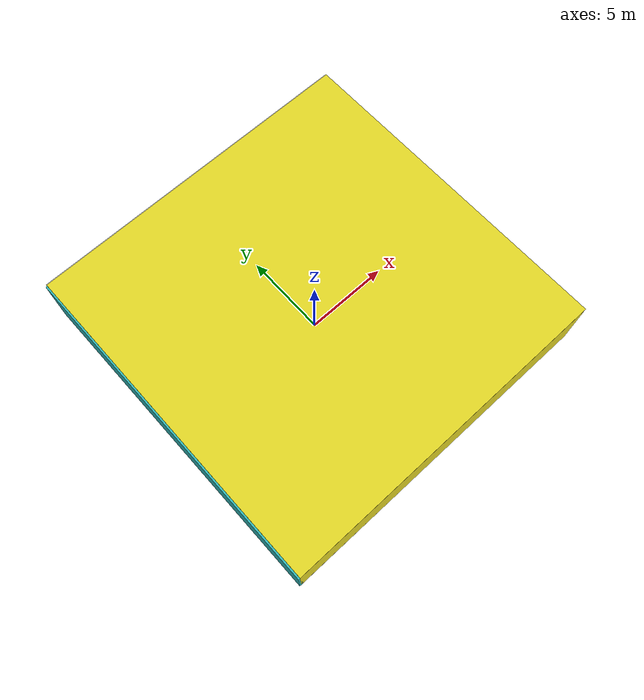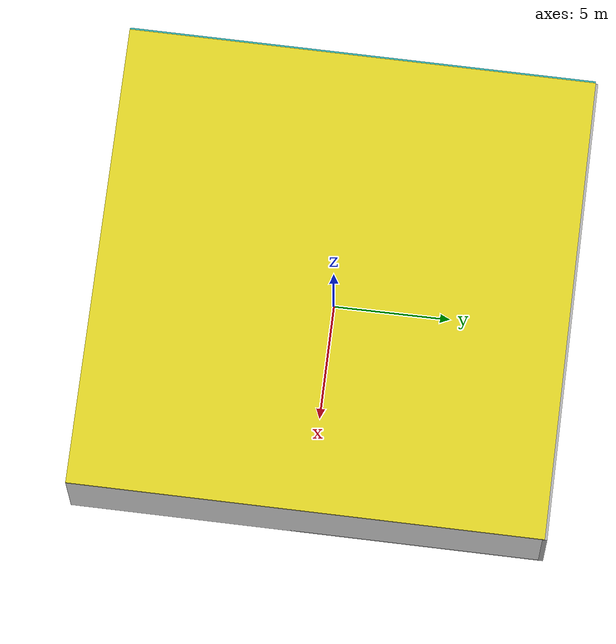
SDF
<sdf version="1.4">
 <world name="default">
  <physics type="ode">
   <max_step_size>0.001</max_step_size>
   <real_time_factor>1</real_time_factor>
   <real_time_update_rate>1000</real_time_update_rate>
   <gravity>0 0 -9.8</gravity>
  </physics>
  <scene><ambient>0.4 0.4 0.4 1</ambient><background>0.7 0.7 0.7 1</background><shadows>1</shadows></scene>
  <model name="Surrounding">
   <static>1</static>
   <link name="Ceiling">
    <collision name="Ceiling_Collision"><geometry><box><size>20 20 0.1</size></box></geometry></collision>
    <visual name="Ceiling_Visual">
     <geometry><box><size>20 20 0.1</size></box></geometry>
     <material>
      <script><uri>file://media/materials/scripts/gazebo.material</uri><name>Gazebo/Yellow</name></script>
     </material>
    </visual>
    <pose>0 0 4.05 0 0 0</pose>
   </link>
   <link name="Wall_South">
    <collision name="Wall_South_Collision">
     <geometry><box><size>20 0 4</size></box></geometry>
     <pose>0 0 2 0 -0 0</pose>
    </collision>
    <visual name="Wall_South_Visual">
     <pose>0 0 2 0 -0 0</pose>
     <geometry><box><size>20 0 4</size></box></geometry>
     <material>
      <script><uri>file://media/materials/scripts/gazebo.material</uri><name>Gazebo/YellowGlow</name></script>
     </material>
    </visual>
    <velocity_decay><linear>0</linear><angular>0</angular></velocity_decay>
    <pose>0 -10 0 0 -0 0</pose>
   </link>
   <link name="Wall_East">
    <collision name="Wall_21_Collision">
     <geometry><box><size>20 0 4</size></box></geometry>
     <pose>0 0 2 0 -0 0</pose>
    </collision>
    <visual name="Wall_21_Visual">
     <pose>0 0 2 0 -0 0</pose>
     <geometry><box><size>20 0 4</size></box></geometry>
     <material>
      <script><uri>file://media/materials/scripts/gazebo.material</uri><name>Gazebo/WhiteGlow</name></script>
     </material>
    </visual>
    <velocity_decay><linear>0</linear><angular>0</angular></velocity_decay>
    <pose>10 0 0 0 -0 1.5708</pose>
   </link>
   <link name="Wall_North">
    <collision name="Wall_22_Collision">
     <geometry><box><size>20 0.2 4</size></box></geometry>
     <pose>0 0 2 0 -0 0</pose>
    </collision>
    <visual name="Wall_22_Visual">
     <pose>0 0 2 0 -0 0</pose>
     <geometry><box><size>20 0.2 4</size></box></geometry>
     <material>
      <script><uri>file://media/materials/scripts/gazebo.material</uri><name>Gazebo/LightOn</name></script>
     </material>
    </visual>
    <velocity_decay><linear>0</linear><angular>0</angular></velocity_decay>
    <pose>0 10 0 0 -0 0</pose>
   </link>
   <link name="Wall_West">
    <collision name="Wall_23_Collision">
     <geometry><box><size>20 0.2 4</size></box></geometry>
     <pose>0 0 2 0 -0 0</pose>
    </collision>
    <visual name="Wall_23_Visual">
     <pose>0 0 2 0 -0 0</pose>
     <geometry><box><size>20 0.2 4</size></box></geometry>
     <material>
      <script><uri>file://media/materials/scripts/gazebo.material</uri><name>Gazebo/Turquoise</name></script>
     </material>
    </visual>
    <velocity_decay><linear>0</linear><angular>0</angular></velocity_decay>
    <pose>-10 0 0 0 0 -1.5708</pose>
   </link>
   <link name="Ground_link">
    <collision name="collision">
     <pose>0 0 .05 0 -0 0</pose>
     <geometry><box><size>20 20 0.1</size></box></geometry>
    </collision>
    <visual name="visual">
     <pose>0 0 .05 0 -0 0</pose>
     <geometry><box><size>20 20 0.1</size></box></geometry>
     <material>
      <script><uri>file://media/materials/scripts/gazebo.material</uri><name>Gazebo/GreyTransparent</name></script>
     </material>
    </visual>
   </link>
   <static>1</static>
  </model>
  <spherical_coordinates>
   <surface_model>EARTH_WGS84</surface_model>
   <latitude_deg>0</latitude_deg>
   <longitude_deg>0</longitude_deg>
   <elevation>0</elevation>
   <heading_deg>0</heading_deg>
  </spherical_coordinates>
  <light name="lightball_0" type="diffuse">
   <diffuse>0.8 0.8 0.8 1</diffuse>
   <specular>0.2 0.2 0.2 1</specular>
   <attenuation>
    <range>100</range>
    <constant>0.7</constant>
    <linear>0.01</linear>
    <quadratic>0.001</quadratic>
   </attenuation>
   <direction>-0.5 0.1 -0.9</direction>
   <pose>1.32961668356 5.83516615336 1.90034270964 0 0 0</pose>
  </light>
  <light name="lightball_1" type="diffuse">
   <diffuse>0.8 0.8 0.8 1</diffuse>
   <specular>0.2 0.2 0.2 1</specular>
   <attenuation>
    <range>100</range>
    <constant>0.7</constant>
    <linear>0.01</linear>
    <quadratic>0.001</quadratic>
   </attenuation>
   <direction>-0.5 0.1 -0.9</direction>
   <pose>-7.47204298163 8.75542916868 2.68199675703 0 0 0</pose>
  </light>
  <light name="lightball_2" type="diffuse">
   <diffuse>0.8 0.8 0.8 1</diffuse>
   <specular>0.2 0.2 0.2 1</specular>
   <attenuation>
    <range>100</range>
    <constant>0.7</constant>
    <linear>0.01</linear>
    <quadratic>0.001</quadratic>
   </attenuation>
   <direction>-0.5 0.1 -0.9</direction>
   <pose>9.90180469328 7.05592220674 2.75554144101 0 0 0</pose>
  </light>
  <light name="lightball_3" type="diffuse">
   <diffuse>0.8 0.8 0.8 1</diffuse>
   <specular>0.2 0.2 0.2 1</specular>
   <attenuation>
    <range>100</range>
    <constant>0.7</constant>
    <linear>0.01</linear>
    <quadratic>0.001</quadratic>
   </attenuation>
   <direction>-0.5 0.1 -0.9</direction>
   <pose>2.48692391846 -1.58899695573 1.59387236167 0 0 0</pose>
  </light>
  <light name="lightball_4" type="diffuse">
   <diffuse>0.8 0.8 0.8 1</diffuse>
   <specular>0.2 0.2 0.2 1</specular>
   <attenuation>
    <range>100</range>
    <constant>0.7</constant>
    <linear>0.01</linear>
    <quadratic>0.001</quadratic>
   </attenuation>
   <direction>-0.5 0.1 -0.9</direction>
   <pose>9.59105091828 3.76616903095 1.11044720282 0 0 0</pose>
  </light>
  <light name="lightball_5" type="diffuse">
   <diffuse>0.8 0.8 0.8 1</diffuse>
   <specular>0.2 0.2 0.2 1</specular>
   <attenuation>
    <range>100</range>
    <constant>0.7</constant>
    <linear>0.01</linear>
    <quadratic>0.001</quadratic>
   </attenuation>
   <direction>-0.5 0.1 -0.9</direction>
   <pose>-2.45301109462 6.74610012383 1.26562103249 0 0 0</pose>
  </light>
  <light name="lightball_6" type="diffuse">
   <diffuse>0.8 0.8 0.8 1</diffuse>
   <specular>0.2 0.2 0.2 1</specular>
   <attenuation>
    <range>100</range>
    <constant>0.7</constant>
    <linear>0.01</linear>
    <quadratic>0.001</quadratic>
   </attenuation>
   <direction>-0.5 0.1 -0.9</direction>
   <pose>8.53854766672 -3.00162207423 1.73624425674 0 0 0</pose>
  </light>
  <light name="lightball_7" type="diffuse">
   <diffuse>0.8 0.8 0.8 1</diffuse>
   <specular>0.2 0.2 0.2 1</specular>
   <attenuation>
    <range>100</range>
    <constant>0.7</constant>
    <linear>0.01</linear>
    <quadratic>0.001</quadratic>
   </attenuation>
   <direction>-0.5 0.1 -0.9</direction>
   <pose>7.53856749841 -3.78032380311 2.25501190178 0 0 0</pose>
  </light>
  <light name="lightball_8" type="diffuse">
   <diffuse>0.8 0.8 0.8 1</diffuse>
   <specular>0.2 0.2 0.2 1</specular>
   <attenuation>
    <range>100</range>
    <constant>0.7</constant>
    <linear>0.01</linear>
    <quadratic>0.001</quadratic>
   </attenuation>
   <direction>-0.5 0.1 -0.9</direction>
   <pose>-6.36304289611 7.03348607205 2.18789133467 0 0 0</pose>
  </light>
  <include>
   <uri>model://robocup_3Dsim_goal</uri>
   <pose>-7.12770916219 -3.76182309205 0 0 0 2.26503791899</pose>
  </include>
  <include>
   <uri>model://construction_cone</uri>
   <pose>-5.43422068762 4.85812670363 0 0 0 1.75335490934</pose>
  </include>
  <include>
   <uri>model://textured_shapes</uri>
   <pose>1.8895158134 -7.31742900027 0 0 0 0.171563187976</pose>
  </include>
  <include>
   <uri>model://construction_cone</uri>
   <pose>1.66723917749 2.59388800084 0 0 0 2.03959897944</pose>
  </include>
  <include><uri>model://cabinet</uri><pose>5.42900509029 -8.36970800533 0 0 0 2.85277831668</pose></include>
  <include><uri>model://cabinet</uri><pose>8.62966086805 6.466696663 0 0 0 2.11329249533</pose></include>
 </world>
</sdf>

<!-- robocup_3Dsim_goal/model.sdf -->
<sdf version="1.5">
  <model name="robocup_3d_goal">
    <static>true</static>
    <link name="left_post">
      <pose>0 1.05 0.45 0 0 0</pose>
      <collision name="collision">
        <geometry>
          <cylinder>
            <radius>0.05</radius>
            <length>0.9</length>
          </cylinder>
        </geometry>
      </collision>
      <visual name="visual">
        <geometry>
          <cylinder>
            <radius>0.05</radius>
            <length>0.9</length>
          </cylinder>
        </geometry>
        <material>
          <script>
            <uri>file://media/materials/scripts/gazebo.material</uri>
            <name>Gazebo/ZincYellow</name>
          </script>
        </material>
      </visual>
    </link>
    <link name="left_support_horiz_lower">
      <pose>0.30 1.05 0.01 0 0 0</pose>
      <collision name="collision">
        <geometry>
          <box>
            <size>0.50 0.02 0.02</size>
          </box>
        </geometry>
      </collision>
      <visual name="visual">
        <geometry>
          <box>
            <size>0.50 0.02 0.02</size>
          </box>
        </geometry>
        <material>
          <script>
            <uri>file://media/materials/scripts/gazebo.material</uri>
            <name>Gazebo/White</name>
          </script>
        </material>
      </visual>
    </link>
    <link name="left_support_horiz_upper">
      <pose>0.30 1.05 0.79 0 0 0</pose>
      <collision name="collision">
        <geometry>
          <box>
            <size>0.50 0.02 0.02</size>
          </box>
        </geometry>
      </collision>
      <visual name="visual">
        <geometry>
          <box>
            <size>0.50 0.02 0.02</size>
          </box>
        </geometry>
        <material>
          <script>
            <uri>file://media/materials/scripts/gazebo.material</uri>
            <name>Gazebo/White</name>
          </script>
        </material>
      </visual>
    </link>
    <link name="left_support_vertical">
      <pose>0.56 1.05 0.4 0 1.5708 0</pose>
      <collision name="collision">
        <geometry>
          <box>
            <size>0.80 0.02 0.02</size>
          </box>
        </geometry>
      </collision>
      <visual name="visual">
        <geometry>
          <box>
            <size>0.80 0.02 0.02</size>
          </box>
        </geometry>
        <material>
          <script>
            <uri>file://media/materials/scripts/gazebo.material</uri>
            <name>Gazebo/White</name>
          </script>
        </material>
      </visual>
    </link>
    <link name="right_support_horiz_lower">
      <pose>0.30 -1.05 0.01 0 0 0</pose>
      <collision name="collision">
        <geometry>
          <box>
            <size>0.50 0.02 0.02</size>
          </box>
        </geometry>
      </collision>
      <visual name="visual">
        <geometry>
          <box>
            <size>0.50 0.02 0.02</size>
          </box>
        </geometry>
        <material>
          <script>
            <uri>file://media/materials/scripts/gazebo.material</uri>
            <name>Gazebo/White</name>
          </script>
        </material>
      </visual>
    </link>
    <link name="right_support_horiz_upper">
      <pose>0.30 -1.05 0.79 0 0 0</pose>
      <collision name="collision">
        <geometry>
          <box>
            <size>0.50 0.02 0.02</size>
          </box>
        </geometry>
      </collision>
      <visual name="visual">
        <geometry>
          <box>
            <size>0.50 0.02 0.02</size>
          </box>
        </geometry>
        <material>
          <script>
            <uri>file://media/materials/scripts/gazebo.material</uri>
            <name>Gazebo/White</name>
          </script>
        </material>
      </visual>
    </link>
    <link name="right_support_vertical">
      <pose>0.56 -1.05 0.4 0 1.5708 0</pose>
      <collision name="collision">
        <geometry>
          <box>
            <size>0.80 0.02 0.02</size>
          </box>
        </geometry>
      </collision>
      <visual name="visual">
        <geometry>
          <box>
            <size>0.80 0.02 0.02</size>
          </box>
        </geometry>
        <material>
          <script>
            <uri>file://media/materials/scripts/gazebo.material</uri>
            <name>Gazebo/White</name>
          </script>
        </material>
      </visual>
    </link>
    <link name="center_support_horiz_lower">
      <pose>0.56 0 0.01 0 1.5708 0</pose>
      <collision name="collision">
        <geometry>
          <box>
            <size>0.02 2.08 0.02</size>
          </box>
        </geometry>
      </collision>
      <visual name="visual">
        <geometry>
          <box>
            <size>0.02 2.08 0.02</size>
          </box>
        </geometry>
        <material>
          <script>
            <uri>file://media/materials/scripts/gazebo.material</uri>
            <name>Gazebo/White</name>
          </script>
        </material>
      </visual>
    </link>
    <link name="center_support_horiz_upper">
      <pose>0.56 0 0.79 0 1.5708 0</pose>
      <collision name="collision">
        <geometry>
          <box>
            <size>0.02 2.08 0.02</size>
          </box>
        </geometry>
      </collision>
      <visual name="visual">
        <geometry>
          <box>
            <size>0.02 2.08 0.02</size>
          </box>
        </geometry>
        <material>
          <script>
            <uri>file://media/materials/scripts/gazebo.material</uri>
            <name>Gazebo/White</name>
          </script>
        </material>
      </visual>
    </link>
    <link name="right_post">
      <pose>0 -1.05 0.45 0 0 0</pose>
      <collision name="collision">
        <geometry>
          <cylinder>
            <radius>0.05</radius>
            <length>0.9</length>
          </cylinder>
        </geometry>
      </collision>
      <visual name="visual">
        <geometry>
          <cylinder>
            <radius>0.05</radius>
            <length>0.9</length>
          </cylinder>
        </geometry>
        <material>
          <script>
            <uri>file://media/materials/scripts/gazebo.material</uri>
            <name>Gazebo/ZincYellow</name>
          </script>
        </material>
      </visual>
    </link>
    <link name="crossbar">
      <pose>0 0 0.85 1.57 1.57 0</pose>
      <collision name="collision">
        <geometry>
          <cylinder>
            <radius>0.05</radius>
            <length>2.0</length>
          </cylinder>
        </geometry>
      </collision>
      <visual name="visual">
        <geometry>
          <cylinder>
            <radius>0.05</radius>
            <length>2.0</length>
          </cylinder>
        </geometry>
        <material>
          <script>
            <uri>file://media/materials/scripts/gazebo.material</uri>
            <name>Gazebo/ZincYellow</name>
          </script>
        </material>
      </visual>
    </link>
    <link name="center_net">
      <pose>0.56 0 0.40 0 0 0</pose>
      <collision name="collision">
        <geometry>
          <box>
            <size>0.01 2.1 0.80</size>
          </box>
        </geometry>
      </collision>
      <visual name="visual">
        <geometry>
          <box>
            <size>0.01 2.1 0.80</size>
          </box>
        </geometry>
        <material>
          <script>
            <uri>model://../model_source/models/robocup09_spl_field/materials/scripts/</uri>
            <uri>model://../model_source/models/robocup09_spl_field/materials/textures/</uri>
            <name>RoboCup/Net</name>
          </script>
        </material>
      </visual>
    </link>
    <link name="left_net">
      <pose>0.30 1.05 0.40 0 0 0</pose>
      <collision name="collision">
        <geometry>
          <box>
            <size>0.50 0.01 0.76</size>
          </box>
        </geometry>
      </collision>
      <visual name="visual">
        <geometry>
          <box>
            <size>0.50 0.01 0.76</size>
          </box>
        </geometry>
        <material>
          <script>
            <uri>model://../model_source/models/robocup09_spl_field/materials/scripts/</uri>
            <uri>model://../model_source/models/robocup09_spl_field/materials/textures/</uri>
            <name>RoboCup/Net</name>
          </script>
        </material>
      </visual>
    </link>
    <link name="right_net">
      <pose>0.30 -1.05 0.40 0 0 0</pose>
      <collision name="collision">
        <geometry>
          <box>
            <size>0.50 0.01 0.76</size>
          </box>
        </geometry>
      </collision>
      <visual name="visual">
        <geometry>
          <box>
            <size>0.50 0.01 0.76</size>
          </box>
        </geometry>
        <material>
          <script>
            <uri>model://../model_source/models/robocup09_spl_field/materials/scripts/</uri>
            <uri>model://../model_source/models/robocup09_spl_field/materials/textures/</uri>
            <name>RoboCup/Net</name>
          </script>
        </material>
      </visual>
    </link>
  </model>
</sdf>

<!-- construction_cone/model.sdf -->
<sdf version="1.5">
  <model name="Construction Cone">
    <link name="link">
      <collision name="collision">
        <geometry>
          <mesh>
            <scale>10 10 10</scale>
            <uri>file://isr-testbed/construction_cone/meshes/construction_cone.dae</uri>
          </mesh>
        </geometry>
      </collision>
      <visual name="visual">
        <geometry>
          <mesh>
            <scale>10 10 10</scale>
            <uri>file://isr-testbed/construction_cone/meshes/construction_cone.dae</uri>
          </mesh>
        </geometry>
      </visual>
    </link>
  </model>
</sdf>

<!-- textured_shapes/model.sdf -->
<sdf version="1.6">
  <model name="textured_shapes">
    <pose>0 0 0.5 0 0 0</pose>
    <link name="box">
      <pose>0 -1.5 0 0 0 0</pose>
      <collision name="collision">
        <geometry>
          <box>
            <size>1 1 1</size>
          </box>
        </geometry>
      </collision>
      <visual name="visual">
        <geometry>
          <box>
            <size>1 1 1</size>
          </box>
        </geometry>
        <material>
          <script>
            <uri>model://../model_source/models/textured_shapes/materials/scripts</uri>
            <uri>model://../model_source/models/textured_shapes/materials/textures</uri>
            <name>TexturedShape/Squares</name>
          </script>
        </material>
      </visual>
    </link>
    <link name="sphere">
      <collision name="collision">
        <geometry>
          <sphere>
            <radius>0.5</radius>
          </sphere>
        </geometry>
      </collision>
      <visual name="visual">
        <geometry>
          <sphere>
            <radius>0.5</radius>
          </sphere>
        </geometry>
        <material>
          <script>
            <uri>model://../model_source/models/textured_shapes/materials/scripts</uri>
            <uri>model://../model_source/models/textured_shapes/materials/textures</uri>
            <name>TexturedShape/Squares</name>
          </script>
        </material>
      </visual>
    </link>
    <link name="cylinder">
      <pose>0 1.5 0 0 0 0</pose>
      <collision name="collision">
        <geometry>
          <cylinder>
            <radius>0.5</radius>
            <length>1</length>
          </cylinder>
        </geometry>
      </collision>
      <visual name="visual">
        <geometry>
          <cylinder>
            <radius>0.5</radius>
            <length>1</length>
          </cylinder>
        </geometry>
        <material>
          <script>
            <uri>model://../model_source/models/textured_shapes/materials/scripts</uri>
            <uri>model://../model_source/models/textured_shapes/materials/textures</uri>
            <name>TexturedShape/Squares</name>
          </script>
        </material>
      </visual>
    </link>
  </model>
</sdf>

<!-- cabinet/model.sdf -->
<sdf version="1.5">
  <model name="cabinet">
    <static>true</static>
    <link name="cabinet_bottom_plate">
      <inertial>
        <pose>0 0 -1 0 0 0</pose>
        <inertia>
          <ixx>2.050000</ixx>
          <ixy>0</ixy>
          <ixz>0</ixz>
          <iyy>2.050000</iyy>
          <iyz>0</iyz>
          <izz>2.050000</izz>
        </inertia>
        <mass>25.000000</mass>
      </inertial>
      <collision name="cabinet_bottom_plate_geom">
        <pose>0 0 0.010000 0 0 0</pose>
        <geometry>
          <box>
            <size>0.450000 0.450000 0.020000</size>
          </box>
        </geometry>
      </collision>
      <visual name="cabinet_bottom_plate_geom_visual">
        <pose>0 0 0.010000 0 0 0</pose>
        <geometry>
          <box>
            <size>0.450000 0.450000 0.020000</size>
          </box>
        </geometry>
        <material>
          <script>
            <uri>model://media/materials/scripts/gazebo.material</uri>
            <name>Gazebo/Wood</name>
          </script>
        </material>
      </visual>
      <collision name="cabinet_bottom_plate_geom_cabinet_back_plate">
        <pose>0.235000 0 0.510000 0 0 0</pose>
        <geometry>
          <box>
            <size>0.020000 0.450000 1.020000</size>
          </box>
        </geometry>
      </collision>
      <visual name="cabinet_bottom_plate_geom_cabinet_back_plate_visual">
        <pose>0.235000 0 0.510000 0 0 0</pose>
        <geometry>
          <box>
            <size>0.020000 0.450000 1.020000</size>
          </box>
        </geometry>
        <material>
          <script>
            <uri>model://media/materials/scripts/gazebo.material</uri>
            <name>Gazebo/Wood</name>
          </script>
        </material>
      </visual>
      <collision name="cabinet_bottom_plate_geom_cabinet_left_plate">
        <pose>0 0.235000 0.510000 0 0 0</pose>
        <geometry>
          <box>
            <size>0.450000 0.020000 1.020000</size>
          </box>
        </geometry>
      </collision>
      <visual name="cabinet_bottom_plate_geom_cabinet_left_plate_visual">
        <pose>0 0.235000 0.510000 0 0 0</pose>
        <geometry>
          <box>
            <size>0.450000 0.020000 1.020000</size>
          </box>
        </geometry>
        <material>
          <script>
            <uri>model://media/materials/scripts/gazebo.material</uri>
            <name>Gazebo/Wood</name>
          </script>
        </material>
      </visual>
      <collision name="cabinet_bottom_plate_geom_cabinet_middle_plate">
        <pose>0 0 0.510000 0 0 0</pose>
        <geometry>
          <box>
            <size>0.450000 0.450000 0.020000</size>
          </box>
        </geometry>
      </collision>
      <visual name="cabinet_bottom_plate_geom_cabinet_middle_plate_visual">
        <pose>0 0 0.510000 0 0 0</pose>
        <geometry>
          <box>
            <size>0.450000 0.450000 0.020000</size>
          </box>
        </geometry>
        <material>
          <script>
            <uri>model://media/materials/scripts/gazebo.material</uri>
            <name>Gazebo/Wood</name>
          </script>
        </material>
      </visual>
      <collision name="cabinet_bottom_plate_geom_cabinet_right_plate">
        <pose>0 -0.235000 0.510000 0 0 0</pose>
        <geometry>
          <box>
            <size>0.450000 0.020000 1.020000</size>
          </box>
        </geometry>
      </collision>
      <visual name="cabinet_bottom_plate_geom_cabinet_right_plate_visual">
        <pose>0 -0.235000 0.510000 0 0 0</pose>
        <geometry>
          <box>
            <size>0.450000 0.020000 1.020000</size>
          </box>
        </geometry>
        <material>
          <script>
            <uri>model://media/materials/scripts/gazebo.material</uri>
            <name>Gazebo/Wood</name>
          </script>
        </material>
      </visual>
      <collision name="cabinet_bottom_plate_geom_cabinet_top_plate">
        <pose>0 0 1.010000 0 0 0</pose>
        <geometry>
          <box>
            <size>0.450000 0.450000 0.020000</size>
          </box>
        </geometry>
      </collision>
      <visual name="cabinet_bottom_plate_geom_cabinet_top_plate_visual">
        <pose>0 0 1.010000 0 0 0</pose>
        <geometry>
          <box>
            <size>0.450000 0.450000 0.020000</size>
          </box>
        </geometry>
        <material>
          <script>
            <uri>model://media/materials/scripts/gazebo.material</uri>
            <name>Gazebo/Wood</name>
          </script>
        </material>
      </visual>
    </link>
  </model>
</sdf>
